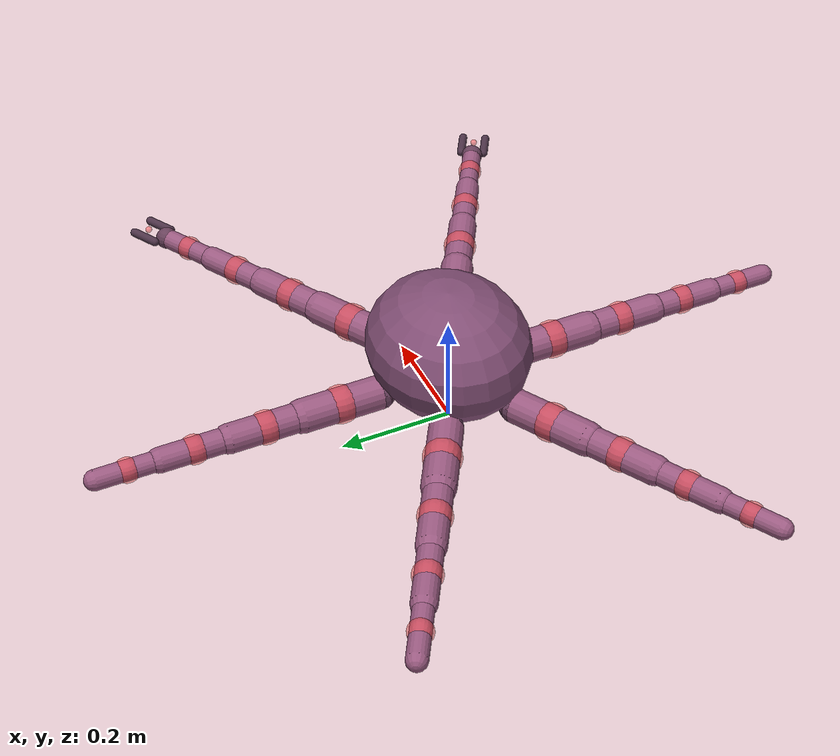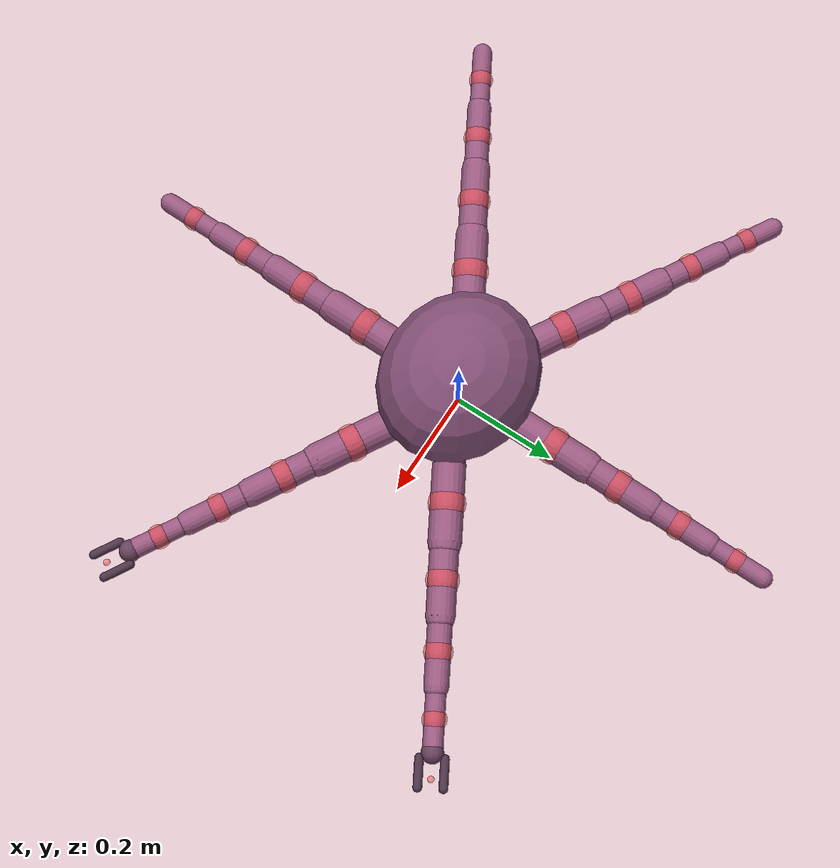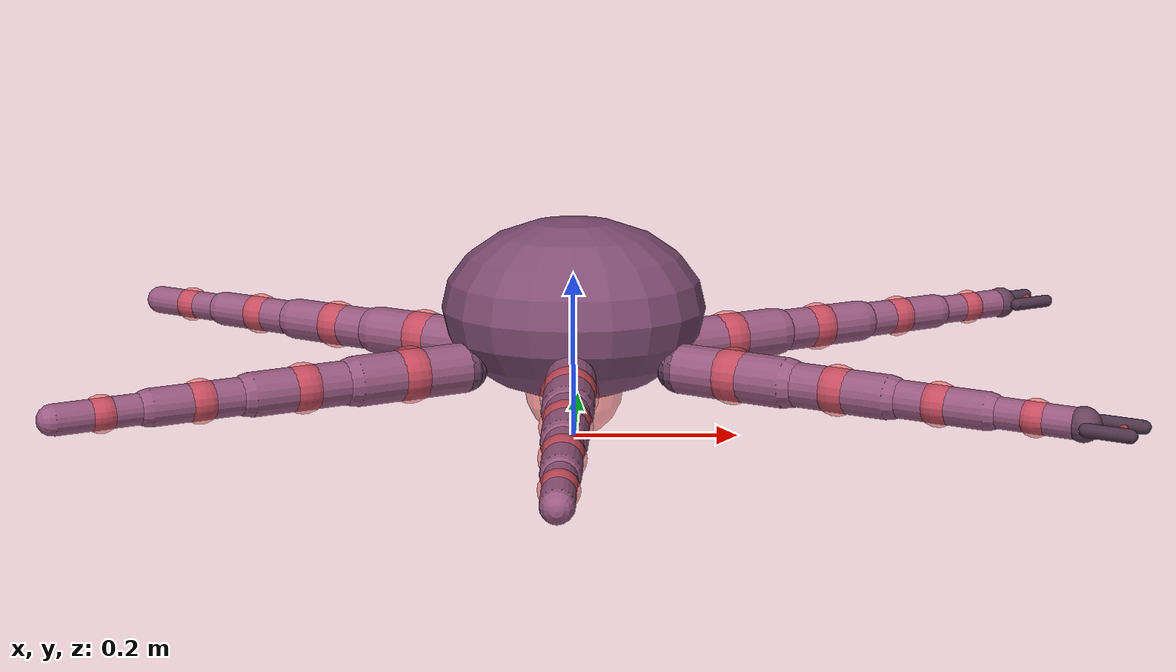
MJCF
<mujoco model="mobile_octopus_v2">
  <compiler angle="radian" autolimits="true" inertiafromgeom="true" />
  <option timestep="0.002" gravity="0 0 -9.81" integrator="implicitfast" />
  <default>
    <geom condim="3" friction="1.0 0.005 0.0001" solref="0.01 1" solimp="0.95 0.99 0.001" margin="0.0005" />
    <joint damping="0.5" armature="0.01" limited="true" />
    <position ctrllimited="true" forcelimited="true" />
    <velocity ctrllimited="true" forcelimited="true" />
  </default>
  <worldbody>
    <body name="mantle" pos="0.00000 0.00000 0.16000">
      <freejoint name="root" />
      <geom name="mantle_geom" type="ellipsoid" size="0.16000 0.14000 0.11000" density="540.0" rgba="0.5 0.3 0.45 1" friction="0.8 0.005 0.0001" />
      <site name="mantle_imu" pos="0.00000 0.00000 0.00000" size="0.0040" rgba="1 0.3 0.3 0.5" />
      <site name="mantle_touch" pos="0.00000 0.00000 -0.10000" size="0.0600" rgba="1 0.3 0.3 0.5" />
      <body name="t0_root" pos="0.12990 0.06500 -0.06000" euler="0.00000 0.00000 0.52360">
        <geom name="t0_root_geom" type="sphere" size="0.03000" density="900.0" pos="0.00000 0.00000 0.00000" rgba="0.45 0.28 0.4 1" />
        <body name="t0_seg_0" pos="0.00000 0.00000 0.00000">
          <joint name="t0_yaw_0" type="hinge" axis="0.00000 0.00000 1.00000" range="-1.20000 1.20000" />
          <joint name="t0_pitch_0" type="hinge" axis="0.00000 1.00000 0.00000" range="-1.40000 1.40000" />
          <geom name="t0_seg_0_geom" type="capsule" size="0.03000" fromto="0.00000 0.00000 0.00000 0.14000 0.00000 0.00000" density="900.0" rgba="0.6 0.35 0.5 1" friction="1.0 0.005 0.0001" />
          <site name="t0_seg_0_touch" pos="0.07000 0.00000 0.00000" size="0.0340" rgba="1 0.3 0.3 0.5" />
          <body name="t0_seg_1" pos="0.14000 0.00000 0.00000">
            <joint name="t0_yaw_1" type="hinge" axis="0.00000 0.00000 1.00000" range="-1.20000 1.20000" />
            <joint name="t0_pitch_1" type="hinge" axis="0.00000 1.00000 0.00000" range="-1.40000 1.40000" />
            <geom name="t0_seg_1_geom" type="capsule" size="0.02600" fromto="0.00000 0.00000 0.00000 0.13000 0.00000 0.00000" density="900.0" rgba="0.6 0.35 0.5 1" friction="1.0 0.005 0.0001" />
            <site name="t0_seg_1_touch" pos="0.06500 0.00000 0.00000" size="0.0300" rgba="1 0.3 0.3 0.5" />
            <body name="t0_seg_2" pos="0.13000 0.00000 0.00000">
              <joint name="t0_yaw_2" type="hinge" axis="0.00000 0.00000 1.00000" range="-1.20000 1.20000" />
              <joint name="t0_pitch_2" type="hinge" axis="0.00000 1.00000 0.00000" range="-1.40000 1.40000" />
              <geom name="t0_seg_2_geom" type="capsule" size="0.02200" fromto="0.00000 0.00000 0.00000 0.12000 0.00000 0.00000" density="900.0" rgba="0.6 0.35 0.5 1" friction="1.0 0.005 0.0001" />
              <site name="t0_seg_2_touch" pos="0.06000 0.00000 0.00000" size="0.0260" rgba="1 0.3 0.3 0.5" />
              <body name="t0_seg_3" pos="0.12000 0.00000 0.00000">
                <joint name="t0_yaw_3" type="hinge" axis="0.00000 0.00000 1.00000" range="-1.20000 1.20000" />
                <joint name="t0_pitch_3" type="hinge" axis="0.00000 1.00000 0.00000" range="-1.40000 1.40000" />
                <geom name="t0_seg_3_geom" type="capsule" size="0.01800" fromto="0.00000 0.00000 0.00000 0.11000 0.00000 0.00000" density="900.0" rgba="0.6 0.35 0.5 1" friction="1.0 0.005 0.0001" />
                <site name="t0_seg_3_touch" pos="0.05500 0.00000 0.00000" size="0.0220" rgba="1 0.3 0.3 0.5" />
                <body name="t0_pincer" pos="0.11000 0.00000 0.00000">
                  <geom name="t0_pincer_geom" type="sphere" size="0.02000" density="900.0" pos="0.00000 0.00000 0.00000" rgba="0.4 0.25 0.35 1" />
                  <body name="t0_finger_left" pos="0.01000 0.02200 0.00000">
                    <joint name="t0_pinch_left" type="hinge" axis="0.00000 0.00000 -1.00000" range="-0.90000 0.90000" />
                    <geom name="t0_finger_left_geom" type="capsule" size="0.00800" fromto="0.00000 0.00000 0.00000 0.05000 0.00000 0.00000" density="900.0" rgba="0.3 0.2 0.28 1" friction="1.4 0.02 0.001" condim="4" />
                  </body>
                  <body name="t0_finger_right" pos="0.01000 -0.02200 0.00000">
                    <joint name="t0_pinch_right" type="hinge" axis="0.00000 0.00000 1.00000" range="-0.90000 0.90000" />
                    <geom name="t0_finger_right_geom" type="capsule" size="0.00800" fromto="0.00000 0.00000 0.00000 0.05000 0.00000 0.00000" density="900.0" rgba="0.3 0.2 0.28 1" friction="1.4 0.02 0.001" condim="4" />
                  </body>
                  <site name="t0_grasp_centre" pos="0.04500 0.00000 0.00000" size="0.0060" rgba="1 0.3 0.3 0.5" />
                </body>
              </body>
            </body>
          </body>
        </body>
      </body>
      <body name="t1_root" pos="0.00000 0.13000 -0.06000" euler="0.00000 0.00000 1.57080">
        <geom name="t1_root_geom" type="sphere" size="0.03000" density="900.0" pos="0.00000 0.00000 0.00000" rgba="0.45 0.28 0.4 1" />
        <body name="t1_seg_0" pos="0.00000 0.00000 0.00000">
          <joint name="t1_yaw_0" type="hinge" axis="0.00000 0.00000 1.00000" range="-1.20000 1.20000" />
          <joint name="t1_pitch_0" type="hinge" axis="0.00000 1.00000 0.00000" range="-1.40000 1.40000" />
          <geom name="t1_seg_0_geom" type="capsule" size="0.03000" fromto="0.00000 0.00000 0.00000 0.14000 0.00000 0.00000" density="900.0" rgba="0.6 0.35 0.5 1" friction="1.0 0.005 0.0001" />
          <site name="t1_seg_0_touch" pos="0.07000 0.00000 0.00000" size="0.0340" rgba="1 0.3 0.3 0.5" />
          <body name="t1_seg_1" pos="0.14000 0.00000 0.00000">
            <joint name="t1_yaw_1" type="hinge" axis="0.00000 0.00000 1.00000" range="-1.20000 1.20000" />
            <joint name="t1_pitch_1" type="hinge" axis="0.00000 1.00000 0.00000" range="-1.40000 1.40000" />
            <geom name="t1_seg_1_geom" type="capsule" size="0.02600" fromto="0.00000 0.00000 0.00000 0.13000 0.00000 0.00000" density="900.0" rgba="0.6 0.35 0.5 1" friction="1.0 0.005 0.0001" />
            <site name="t1_seg_1_touch" pos="0.06500 0.00000 0.00000" size="0.0300" rgba="1 0.3 0.3 0.5" />
            <body name="t1_seg_2" pos="0.13000 0.00000 0.00000">
              <joint name="t1_yaw_2" type="hinge" axis="0.00000 0.00000 1.00000" range="-1.20000 1.20000" />
              <joint name="t1_pitch_2" type="hinge" axis="0.00000 1.00000 0.00000" range="-1.40000 1.40000" />
              <geom name="t1_seg_2_geom" type="capsule" size="0.02200" fromto="0.00000 0.00000 0.00000 0.12000 0.00000 0.00000" density="900.0" rgba="0.6 0.35 0.5 1" friction="1.0 0.005 0.0001" />
              <site name="t1_seg_2_touch" pos="0.06000 0.00000 0.00000" size="0.0260" rgba="1 0.3 0.3 0.5" />
              <body name="t1_seg_3" pos="0.12000 0.00000 0.00000">
                <joint name="t1_yaw_3" type="hinge" axis="0.00000 0.00000 1.00000" range="-1.20000 1.20000" />
                <joint name="t1_pitch_3" type="hinge" axis="0.00000 1.00000 0.00000" range="-1.40000 1.40000" />
                <geom name="t1_seg_3_geom" type="capsule" size="0.01800" fromto="0.00000 0.00000 0.00000 0.11000 0.00000 0.00000" density="900.0" rgba="0.6 0.35 0.5 1" friction="1.0 0.005 0.0001" />
                <site name="t1_seg_3_touch" pos="0.05500 0.00000 0.00000" size="0.0220" rgba="1 0.3 0.3 0.5" />
              </body>
            </body>
          </body>
        </body>
      </body>
      <body name="t2_root" pos="-0.12990 0.06500 -0.06000" euler="0.00000 0.00000 2.61799">
        <geom name="t2_root_geom" type="sphere" size="0.03000" density="900.0" pos="0.00000 0.00000 0.00000" rgba="0.45 0.28 0.4 1" />
        <body name="t2_seg_0" pos="0.00000 0.00000 0.00000">
          <joint name="t2_yaw_0" type="hinge" axis="0.00000 0.00000 1.00000" range="-1.20000 1.20000" />
          <joint name="t2_pitch_0" type="hinge" axis="0.00000 1.00000 0.00000" range="-1.40000 1.40000" />
          <geom name="t2_seg_0_geom" type="capsule" size="0.03000" fromto="0.00000 0.00000 0.00000 0.14000 0.00000 0.00000" density="900.0" rgba="0.6 0.35 0.5 1" friction="1.0 0.005 0.0001" />
          <site name="t2_seg_0_touch" pos="0.07000 0.00000 0.00000" size="0.0340" rgba="1 0.3 0.3 0.5" />
          <body name="t2_seg_1" pos="0.14000 0.00000 0.00000">
            <joint name="t2_yaw_1" type="hinge" axis="0.00000 0.00000 1.00000" range="-1.20000 1.20000" />
            <joint name="t2_pitch_1" type="hinge" axis="0.00000 1.00000 0.00000" range="-1.40000 1.40000" />
            <geom name="t2_seg_1_geom" type="capsule" size="0.02600" fromto="0.00000 0.00000 0.00000 0.13000 0.00000 0.00000" density="900.0" rgba="0.6 0.35 0.5 1" friction="1.0 0.005 0.0001" />
            <site name="t2_seg_1_touch" pos="0.06500 0.00000 0.00000" size="0.0300" rgba="1 0.3 0.3 0.5" />
            <body name="t2_seg_2" pos="0.13000 0.00000 0.00000">
              <joint name="t2_yaw_2" type="hinge" axis="0.00000 0.00000 1.00000" range="-1.20000 1.20000" />
              <joint name="t2_pitch_2" type="hinge" axis="0.00000 1.00000 0.00000" range="-1.40000 1.40000" />
              <geom name="t2_seg_2_geom" type="capsule" size="0.02200" fromto="0.00000 0.00000 0.00000 0.12000 0.00000 0.00000" density="900.0" rgba="0.6 0.35 0.5 1" friction="1.0 0.005 0.0001" />
              <site name="t2_seg_2_touch" pos="0.06000 0.00000 0.00000" size="0.0260" rgba="1 0.3 0.3 0.5" />
              <body name="t2_seg_3" pos="0.12000 0.00000 0.00000">
                <joint name="t2_yaw_3" type="hinge" axis="0.00000 0.00000 1.00000" range="-1.20000 1.20000" />
                <joint name="t2_pitch_3" type="hinge" axis="0.00000 1.00000 0.00000" range="-1.40000 1.40000" />
                <geom name="t2_seg_3_geom" type="capsule" size="0.01800" fromto="0.00000 0.00000 0.00000 0.11000 0.00000 0.00000" density="900.0" rgba="0.6 0.35 0.5 1" friction="1.0 0.005 0.0001" />
                <site name="t2_seg_3_touch" pos="0.05500 0.00000 0.00000" size="0.0220" rgba="1 0.3 0.3 0.5" />
              </body>
            </body>
          </body>
        </body>
      </body>
      <body name="t3_root" pos="-0.12990 -0.06500 -0.06000" euler="0.00000 0.00000 3.66519">
        <geom name="t3_root_geom" type="sphere" size="0.03000" density="900.0" pos="0.00000 0.00000 0.00000" rgba="0.45 0.28 0.4 1" />
        <body name="t3_seg_0" pos="0.00000 0.00000 0.00000">
          <joint name="t3_yaw_0" type="hinge" axis="0.00000 0.00000 1.00000" range="-1.20000 1.20000" />
          <joint name="t3_pitch_0" type="hinge" axis="0.00000 1.00000 0.00000" range="-1.40000 1.40000" />
          <geom name="t3_seg_0_geom" type="capsule" size="0.03000" fromto="0.00000 0.00000 0.00000 0.14000 0.00000 0.00000" density="900.0" rgba="0.6 0.35 0.5 1" friction="1.0 0.005 0.0001" />
          <site name="t3_seg_0_touch" pos="0.07000 0.00000 0.00000" size="0.0340" rgba="1 0.3 0.3 0.5" />
          <body name="t3_seg_1" pos="0.14000 0.00000 0.00000">
            <joint name="t3_yaw_1" type="hinge" axis="0.00000 0.00000 1.00000" range="-1.20000 1.20000" />
            <joint name="t3_pitch_1" type="hinge" axis="0.00000 1.00000 0.00000" range="-1.40000 1.40000" />
            <geom name="t3_seg_1_geom" type="capsule" size="0.02600" fromto="0.00000 0.00000 0.00000 0.13000 0.00000 0.00000" density="900.0" rgba="0.6 0.35 0.5 1" friction="1.0 0.005 0.0001" />
            <site name="t3_seg_1_touch" pos="0.06500 0.00000 0.00000" size="0.0300" rgba="1 0.3 0.3 0.5" />
            <body name="t3_seg_2" pos="0.13000 0.00000 0.00000">
              <joint name="t3_yaw_2" type="hinge" axis="0.00000 0.00000 1.00000" range="-1.20000 1.20000" />
              <joint name="t3_pitch_2" type="hinge" axis="0.00000 1.00000 0.00000" range="-1.40000 1.40000" />
              <geom name="t3_seg_2_geom" type="capsule" size="0.02200" fromto="0.00000 0.00000 0.00000 0.12000 0.00000 0.00000" density="900.0" rgba="0.6 0.35 0.5 1" friction="1.0 0.005 0.0001" />
              <site name="t3_seg_2_touch" pos="0.06000 0.00000 0.00000" size="0.0260" rgba="1 0.3 0.3 0.5" />
              <body name="t3_seg_3" pos="0.12000 0.00000 0.00000">
                <joint name="t3_yaw_3" type="hinge" axis="0.00000 0.00000 1.00000" range="-1.20000 1.20000" />
                <joint name="t3_pitch_3" type="hinge" axis="0.00000 1.00000 0.00000" range="-1.40000 1.40000" />
                <geom name="t3_seg_3_geom" type="capsule" size="0.01800" fromto="0.00000 0.00000 0.00000 0.11000 0.00000 0.00000" density="900.0" rgba="0.6 0.35 0.5 1" friction="1.0 0.005 0.0001" />
                <site name="t3_seg_3_touch" pos="0.05500 0.00000 0.00000" size="0.0220" rgba="1 0.3 0.3 0.5" />
              </body>
            </body>
          </body>
        </body>
      </body>
      <body name="t4_root" pos="-0.00000 -0.13000 -0.06000" euler="0.00000 0.00000 4.71239">
        <geom name="t4_root_geom" type="sphere" size="0.03000" density="900.0" pos="0.00000 0.00000 0.00000" rgba="0.45 0.28 0.4 1" />
        <body name="t4_seg_0" pos="0.00000 0.00000 0.00000">
          <joint name="t4_yaw_0" type="hinge" axis="0.00000 0.00000 1.00000" range="-1.20000 1.20000" />
          <joint name="t4_pitch_0" type="hinge" axis="0.00000 1.00000 0.00000" range="-1.40000 1.40000" />
          <geom name="t4_seg_0_geom" type="capsule" size="0.03000" fromto="0.00000 0.00000 0.00000 0.14000 0.00000 0.00000" density="900.0" rgba="0.6 0.35 0.5 1" friction="1.0 0.005 0.0001" />
          <site name="t4_seg_0_touch" pos="0.07000 0.00000 0.00000" size="0.0340" rgba="1 0.3 0.3 0.5" />
          <body name="t4_seg_1" pos="0.14000 0.00000 0.00000">
            <joint name="t4_yaw_1" type="hinge" axis="0.00000 0.00000 1.00000" range="-1.20000 1.20000" />
            <joint name="t4_pitch_1" type="hinge" axis="0.00000 1.00000 0.00000" range="-1.40000 1.40000" />
            <geom name="t4_seg_1_geom" type="capsule" size="0.02600" fromto="0.00000 0.00000 0.00000 0.13000 0.00000 0.00000" density="900.0" rgba="0.6 0.35 0.5 1" friction="1.0 0.005 0.0001" />
            <site name="t4_seg_1_touch" pos="0.06500 0.00000 0.00000" size="0.0300" rgba="1 0.3 0.3 0.5" />
            <body name="t4_seg_2" pos="0.13000 0.00000 0.00000">
              <joint name="t4_yaw_2" type="hinge" axis="0.00000 0.00000 1.00000" range="-1.20000 1.20000" />
              <joint name="t4_pitch_2" type="hinge" axis="0.00000 1.00000 0.00000" range="-1.40000 1.40000" />
              <geom name="t4_seg_2_geom" type="capsule" size="0.02200" fromto="0.00000 0.00000 0.00000 0.12000 0.00000 0.00000" density="900.0" rgba="0.6 0.35 0.5 1" friction="1.0 0.005 0.0001" />
              <site name="t4_seg_2_touch" pos="0.06000 0.00000 0.00000" size="0.0260" rgba="1 0.3 0.3 0.5" />
              <body name="t4_seg_3" pos="0.12000 0.00000 0.00000">
                <joint name="t4_yaw_3" type="hinge" axis="0.00000 0.00000 1.00000" range="-1.20000 1.20000" />
                <joint name="t4_pitch_3" type="hinge" axis="0.00000 1.00000 0.00000" range="-1.40000 1.40000" />
                <geom name="t4_seg_3_geom" type="capsule" size="0.01800" fromto="0.00000 0.00000 0.00000 0.11000 0.00000 0.00000" density="900.0" rgba="0.6 0.35 0.5 1" friction="1.0 0.005 0.0001" />
                <site name="t4_seg_3_touch" pos="0.05500 0.00000 0.00000" size="0.0220" rgba="1 0.3 0.3 0.5" />
              </body>
            </body>
          </body>
        </body>
      </body>
      <body name="t5_root" pos="0.12990 -0.06500 -0.06000" euler="0.00000 0.00000 5.75959">
        <geom name="t5_root_geom" type="sphere" size="0.03000" density="900.0" pos="0.00000 0.00000 0.00000" rgba="0.45 0.28 0.4 1" />
        <body name="t5_seg_0" pos="0.00000 0.00000 0.00000">
          <joint name="t5_yaw_0" type="hinge" axis="0.00000 0.00000 1.00000" range="-1.20000 1.20000" />
          <joint name="t5_pitch_0" type="hinge" axis="0.00000 1.00000 0.00000" range="-1.40000 1.40000" />
          <geom name="t5_seg_0_geom" type="capsule" size="0.03000" fromto="0.00000 0.00000 0.00000 0.14000 0.00000 0.00000" density="900.0" rgba="0.6 0.35 0.5 1" friction="1.0 0.005 0.0001" />
          <site name="t5_seg_0_touch" pos="0.07000 0.00000 0.00000" size="0.0340" rgba="1 0.3 0.3 0.5" />
          <body name="t5_seg_1" pos="0.14000 0.00000 0.00000">
            <joint name="t5_yaw_1" type="hinge" axis="0.00000 0.00000 1.00000" range="-1.20000 1.20000" />
            <joint name="t5_pitch_1" type="hinge" axis="0.00000 1.00000 0.00000" range="-1.40000 1.40000" />
            <geom name="t5_seg_1_geom" type="capsule" size="0.02600" fromto="0.00000 0.00000 0.00000 0.13000 0.00000 0.00000" density="900.0" rgba="0.6 0.35 0.5 1" friction="1.0 0.005 0.0001" />
            <site name="t5_seg_1_touch" pos="0.06500 0.00000 0.00000" size="0.0300" rgba="1 0.3 0.3 0.5" />
            <body name="t5_seg_2" pos="0.13000 0.00000 0.00000">
              <joint name="t5_yaw_2" type="hinge" axis="0.00000 0.00000 1.00000" range="-1.20000 1.20000" />
              <joint name="t5_pitch_2" type="hinge" axis="0.00000 1.00000 0.00000" range="-1.40000 1.40000" />
              <geom name="t5_seg_2_geom" type="capsule" size="0.02200" fromto="0.00000 0.00000 0.00000 0.12000 0.00000 0.00000" density="900.0" rgba="0.6 0.35 0.5 1" friction="1.0 0.005 0.0001" />
              <site name="t5_seg_2_touch" pos="0.06000 0.00000 0.00000" size="0.0260" rgba="1 0.3 0.3 0.5" />
              <body name="t5_seg_3" pos="0.12000 0.00000 0.00000">
                <joint name="t5_yaw_3" type="hinge" axis="0.00000 0.00000 1.00000" range="-1.20000 1.20000" />
                <joint name="t5_pitch_3" type="hinge" axis="0.00000 1.00000 0.00000" range="-1.40000 1.40000" />
                <geom name="t5_seg_3_geom" type="capsule" size="0.01800" fromto="0.00000 0.00000 0.00000 0.11000 0.00000 0.00000" density="900.0" rgba="0.6 0.35 0.5 1" friction="1.0 0.005 0.0001" />
                <site name="t5_seg_3_touch" pos="0.05500 0.00000 0.00000" size="0.0220" rgba="1 0.3 0.3 0.5" />
                <body name="t5_pincer" pos="0.11000 0.00000 0.00000">
                  <geom name="t5_pincer_geom" type="sphere" size="0.02000" density="900.0" pos="0.00000 0.00000 0.00000" rgba="0.4 0.25 0.35 1" />
                  <body name="t5_finger_left" pos="0.01000 0.02200 0.00000">
                    <joint name="t5_pinch_left" type="hinge" axis="0.00000 0.00000 -1.00000" range="-0.90000 0.90000" />
                    <geom name="t5_finger_left_geom" type="capsule" size="0.00800" fromto="0.00000 0.00000 0.00000 0.05000 0.00000 0.00000" density="900.0" rgba="0.3 0.2 0.28 1" friction="1.4 0.02 0.001" condim="4" />
                  </body>
                  <body name="t5_finger_right" pos="0.01000 -0.02200 0.00000">
                    <joint name="t5_pinch_right" type="hinge" axis="0.00000 0.00000 1.00000" range="-0.90000 0.90000" />
                    <geom name="t5_finger_right_geom" type="capsule" size="0.00800" fromto="0.00000 0.00000 0.00000 0.05000 0.00000 0.00000" density="900.0" rgba="0.3 0.2 0.28 1" friction="1.4 0.02 0.001" condim="4" />
                  </body>
                  <site name="t5_grasp_centre" pos="0.04500 0.00000 0.00000" size="0.0060" rgba="1 0.3 0.3 0.5" />
                </body>
              </body>
            </body>
          </body>
        </body>
      </body>
    </body>
  </worldbody>
  <actuator>
    <position name="t0_yaw_0_servo" joint="t0_yaw_0" kp="30.0" ctrlrange="-1.20000 1.20000" forcerange="-12.00000 12.00000" />
    <position name="t0_pitch_0_servo" joint="t0_pitch_0" kp="30.0" ctrlrange="-1.40000 1.40000" forcerange="-12.00000 12.00000" />
    <position name="t0_yaw_1_servo" joint="t0_yaw_1" kp="30.0" ctrlrange="-1.20000 1.20000" forcerange="-12.00000 12.00000" />
    <position name="t0_pitch_1_servo" joint="t0_pitch_1" kp="30.0" ctrlrange="-1.40000 1.40000" forcerange="-12.00000 12.00000" />
    <position name="t0_yaw_2_servo" joint="t0_yaw_2" kp="30.0" ctrlrange="-1.20000 1.20000" forcerange="-12.00000 12.00000" />
    <position name="t0_pitch_2_servo" joint="t0_pitch_2" kp="30.0" ctrlrange="-1.40000 1.40000" forcerange="-12.00000 12.00000" />
    <position name="t0_yaw_3_servo" joint="t0_yaw_3" kp="30.0" ctrlrange="-1.20000 1.20000" forcerange="-12.00000 12.00000" />
    <position name="t0_pitch_3_servo" joint="t0_pitch_3" kp="30.0" ctrlrange="-1.40000 1.40000" forcerange="-12.00000 12.00000" />
    <position name="t0_pinch_left_servo" joint="t0_pinch_left" kp="20.0" ctrlrange="-0.90000 0.90000" forcerange="-6.00000 6.00000" />
    <position name="t0_pinch_right_servo" joint="t0_pinch_right" kp="20.0" ctrlrange="-0.90000 0.90000" forcerange="-6.00000 6.00000" />
    <position name="t1_yaw_0_servo" joint="t1_yaw_0" kp="30.0" ctrlrange="-1.20000 1.20000" forcerange="-12.00000 12.00000" />
    <position name="t1_pitch_0_servo" joint="t1_pitch_0" kp="30.0" ctrlrange="-1.40000 1.40000" forcerange="-12.00000 12.00000" />
    <position name="t1_yaw_1_servo" joint="t1_yaw_1" kp="30.0" ctrlrange="-1.20000 1.20000" forcerange="-12.00000 12.00000" />
    <position name="t1_pitch_1_servo" joint="t1_pitch_1" kp="30.0" ctrlrange="-1.40000 1.40000" forcerange="-12.00000 12.00000" />
    <position name="t1_yaw_2_servo" joint="t1_yaw_2" kp="30.0" ctrlrange="-1.20000 1.20000" forcerange="-12.00000 12.00000" />
    <position name="t1_pitch_2_servo" joint="t1_pitch_2" kp="30.0" ctrlrange="-1.40000 1.40000" forcerange="-12.00000 12.00000" />
    <position name="t1_yaw_3_servo" joint="t1_yaw_3" kp="30.0" ctrlrange="-1.20000 1.20000" forcerange="-12.00000 12.00000" />
    <position name="t1_pitch_3_servo" joint="t1_pitch_3" kp="30.0" ctrlrange="-1.40000 1.40000" forcerange="-12.00000 12.00000" />
    <position name="t2_yaw_0_servo" joint="t2_yaw_0" kp="30.0" ctrlrange="-1.20000 1.20000" forcerange="-12.00000 12.00000" />
    <position name="t2_pitch_0_servo" joint="t2_pitch_0" kp="30.0" ctrlrange="-1.40000 1.40000" forcerange="-12.00000 12.00000" />
    <position name="t2_yaw_1_servo" joint="t2_yaw_1" kp="30.0" ctrlrange="-1.20000 1.20000" forcerange="-12.00000 12.00000" />
    <position name="t2_pitch_1_servo" joint="t2_pitch_1" kp="30.0" ctrlrange="-1.40000 1.40000" forcerange="-12.00000 12.00000" />
    <position name="t2_yaw_2_servo" joint="t2_yaw_2" kp="30.0" ctrlrange="-1.20000 1.20000" forcerange="-12.00000 12.00000" />
    <position name="t2_pitch_2_servo" joint="t2_pitch_2" kp="30.0" ctrlrange="-1.40000 1.40000" forcerange="-12.00000 12.00000" />
    <position name="t2_yaw_3_servo" joint="t2_yaw_3" kp="30.0" ctrlrange="-1.20000 1.20000" forcerange="-12.00000 12.00000" />
    <position name="t2_pitch_3_servo" joint="t2_pitch_3" kp="30.0" ctrlrange="-1.40000 1.40000" forcerange="-12.00000 12.00000" />
    <position name="t3_yaw_0_servo" joint="t3_yaw_0" kp="30.0" ctrlrange="-1.20000 1.20000" forcerange="-12.00000 12.00000" />
    <position name="t3_pitch_0_servo" joint="t3_pitch_0" kp="30.0" ctrlrange="-1.40000 1.40000" forcerange="-12.00000 12.00000" />
    <position name="t3_yaw_1_servo" joint="t3_yaw_1" kp="30.0" ctrlrange="-1.20000 1.20000" forcerange="-12.00000 12.00000" />
    <position name="t3_pitch_1_servo" joint="t3_pitch_1" kp="30.0" ctrlrange="-1.40000 1.40000" forcerange="-12.00000 12.00000" />
    <position name="t3_yaw_2_servo" joint="t3_yaw_2" kp="30.0" ctrlrange="-1.20000 1.20000" forcerange="-12.00000 12.00000" />
    <position name="t3_pitch_2_servo" joint="t3_pitch_2" kp="30.0" ctrlrange="-1.40000 1.40000" forcerange="-12.00000 12.00000" />
    <position name="t3_yaw_3_servo" joint="t3_yaw_3" kp="30.0" ctrlrange="-1.20000 1.20000" forcerange="-12.00000 12.00000" />
    <position name="t3_pitch_3_servo" joint="t3_pitch_3" kp="30.0" ctrlrange="-1.40000 1.40000" forcerange="-12.00000 12.00000" />
    <position name="t4_yaw_0_servo" joint="t4_yaw_0" kp="30.0" ctrlrange="-1.20000 1.20000" forcerange="-12.00000 12.00000" />
    <position name="t4_pitch_0_servo" joint="t4_pitch_0" kp="30.0" ctrlrange="-1.40000 1.40000" forcerange="-12.00000 12.00000" />
    <position name="t4_yaw_1_servo" joint="t4_yaw_1" kp="30.0" ctrlrange="-1.20000 1.20000" forcerange="-12.00000 12.00000" />
    <position name="t4_pitch_1_servo" joint="t4_pitch_1" kp="30.0" ctrlrange="-1.40000 1.40000" forcerange="-12.00000 12.00000" />
    <position name="t4_yaw_2_servo" joint="t4_yaw_2" kp="30.0" ctrlrange="-1.20000 1.20000" forcerange="-12.00000 12.00000" />
    <position name="t4_pitch_2_servo" joint="t4_pitch_2" kp="30.0" ctrlrange="-1.40000 1.40000" forcerange="-12.00000 12.00000" />
    <position name="t4_yaw_3_servo" joint="t4_yaw_3" kp="30.0" ctrlrange="-1.20000 1.20000" forcerange="-12.00000 12.00000" />
    <position name="t4_pitch_3_servo" joint="t4_pitch_3" kp="30.0" ctrlrange="-1.40000 1.40000" forcerange="-12.00000 12.00000" />
    <position name="t5_yaw_0_servo" joint="t5_yaw_0" kp="30.0" ctrlrange="-1.20000 1.20000" forcerange="-12.00000 12.00000" />
    <position name="t5_pitch_0_servo" joint="t5_pitch_0" kp="30.0" ctrlrange="-1.40000 1.40000" forcerange="-12.00000 12.00000" />
    <position name="t5_yaw_1_servo" joint="t5_yaw_1" kp="30.0" ctrlrange="-1.20000 1.20000" forcerange="-12.00000 12.00000" />
    <position name="t5_pitch_1_servo" joint="t5_pitch_1" kp="30.0" ctrlrange="-1.40000 1.40000" forcerange="-12.00000 12.00000" />
    <position name="t5_yaw_2_servo" joint="t5_yaw_2" kp="30.0" ctrlrange="-1.20000 1.20000" forcerange="-12.00000 12.00000" />
    <position name="t5_pitch_2_servo" joint="t5_pitch_2" kp="30.0" ctrlrange="-1.40000 1.40000" forcerange="-12.00000 12.00000" />
    <position name="t5_yaw_3_servo" joint="t5_yaw_3" kp="30.0" ctrlrange="-1.20000 1.20000" forcerange="-12.00000 12.00000" />
    <position name="t5_pitch_3_servo" joint="t5_pitch_3" kp="30.0" ctrlrange="-1.40000 1.40000" forcerange="-12.00000 12.00000" />
    <position name="t5_pinch_left_servo" joint="t5_pinch_left" kp="20.0" ctrlrange="-0.90000 0.90000" forcerange="-6.00000 6.00000" />
    <position name="t5_pinch_right_servo" joint="t5_pinch_right" kp="20.0" ctrlrange="-0.90000 0.90000" forcerange="-6.00000 6.00000" />
  </actuator>
  <sensor>
    <gyro name="mantle_gyro" site="mantle_imu" />
    <accelerometer name="mantle_accel" site="mantle_imu" />
    <framequat name="mantle_orientation" objtype="site" objname="mantle_imu" />
    <touch name="mantle_contact" site="mantle_touch" />
    <touch name="t0_seg_0_contact" site="t0_seg_0_touch" />
    <touch name="t0_seg_1_contact" site="t0_seg_1_touch" />
    <touch name="t0_seg_2_contact" site="t0_seg_2_touch" />
    <touch name="t0_seg_3_contact" site="t0_seg_3_touch" />
    <touch name="t1_seg_0_contact" site="t1_seg_0_touch" />
    <touch name="t1_seg_1_contact" site="t1_seg_1_touch" />
    <touch name="t1_seg_2_contact" site="t1_seg_2_touch" />
    <touch name="t1_seg_3_contact" site="t1_seg_3_touch" />
    <touch name="t2_seg_0_contact" site="t2_seg_0_touch" />
    <touch name="t2_seg_1_contact" site="t2_seg_1_touch" />
    <touch name="t2_seg_2_contact" site="t2_seg_2_touch" />
    <touch name="t2_seg_3_contact" site="t2_seg_3_touch" />
    <touch name="t3_seg_0_contact" site="t3_seg_0_touch" />
    <touch name="t3_seg_1_contact" site="t3_seg_1_touch" />
    <touch name="t3_seg_2_contact" site="t3_seg_2_touch" />
    <touch name="t3_seg_3_contact" site="t3_seg_3_touch" />
    <touch name="t4_seg_0_contact" site="t4_seg_0_touch" />
    <touch name="t4_seg_1_contact" site="t4_seg_1_touch" />
    <touch name="t4_seg_2_contact" site="t4_seg_2_touch" />
    <touch name="t4_seg_3_contact" site="t4_seg_3_touch" />
    <touch name="t5_seg_0_contact" site="t5_seg_0_touch" />
    <touch name="t5_seg_1_contact" site="t5_seg_1_touch" />
    <touch name="t5_seg_2_contact" site="t5_seg_2_touch" />
    <touch name="t5_seg_3_contact" site="t5_seg_3_touch" />
  </sensor>
</mujoco>
